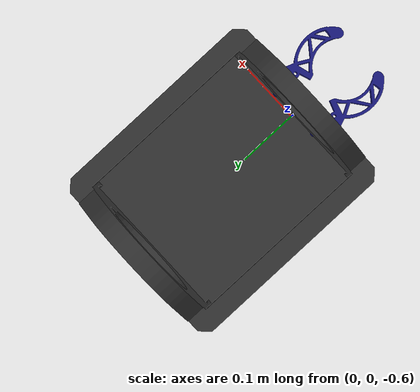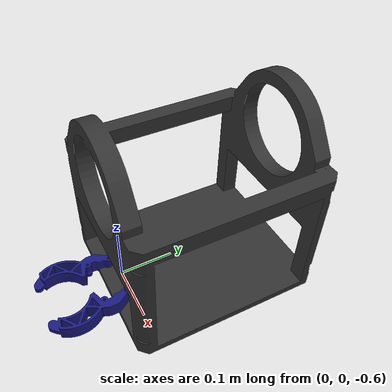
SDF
<?xml version="1.0" ?>
<sdf version="1.10">
    <!-- IMPORTANT
        Ensure that Gazebo Can find the custom plugins created in this world by typing the following command in the terminal:
        "export GZ_SIM_SYSTEM_PLUGIN_PATH=`pwd`"
    -->
    <world name="OceanWorld">
        <physics name="1ms" type="ignored">
            <max_step_size>0.001</max_step_size>
            <real_time_factor>1.0</real_time_factor>
        </physics>
        <plugin
            filename="gz-sim-physics-system"
            name="gz::sim::systems::Physics">
        </plugin>
        <plugin
            filename="gz-sim-user-commands-system"
            name="gz::sim::systems::UserCommands">
        </plugin>
        <plugin
            filename="gz-sim-scene-broadcaster-system"
            name="gz::sim::systems::SceneBroadcaster">
        </plugin>
        <plugin
            filename="plugins/libEER_Buoyancy.so"
            name="gz::sim::systems::EER_Buoyancy">
            <uniform_fluid_density>1000</uniform_fluid_density>
            <set_volume>
                <entity>Beaumont::chassis</entity>
                <!-- Displaes approcimately 23kg of water (extra volume displaced can be imagined as adding foam) -->
                <volume>0.02271175</volume>
                <center_of_volume>0 0.1325 0.1</center_of_volume>
            </set_volume>
        </plugin>
        <light type="directional" name="sun">
            <cast_shadows>true</cast_shadows>
            <pose>0 0 10 0 0 0</pose>
            <diffuse>0.8 0.8 0.8 1</diffuse>
            <specular>0.2 0.2 0.2 1</specular>
            <attenuation>
                <range>1000</range>
                <constant>0.9</constant>
                <linear>0.01</linear>
                <quadratic>0.001</quadratic>
            </attenuation>
            <direction>-0.5 0.1 -0.9</direction>
        </light>

        <model name='water_plane'>
            <static>true</static>
            <link name='link'>
              <visual name='water_plane'>
                <geometry>
                  <plane>
                    <size>100 100</size>
                    <normal>0 0 1</normal>
                  </plane>
                </geometry>
                <material>
                  <ambient>0 0 1 0.5</ambient>
                  <diffuse>0 0 1 0.5</diffuse>
                  <specular>0 0 1 0.5</specular>
                </material>
              </visual>
              <pose>0 0 0 0 0 0</pose>
              <inertial>
                <pose>0 0 0 0 0 0</pose>
                <mass>1</mass>
                <inertia>
                  <ixx>1</ixx>
                  <ixy>0</ixy>
                  <ixz>0</ixz>
                  <iyy>1</iyy>
                  <iyz>0</iyz>
                  <izz>1</izz>
                </inertia>
              </inertial>
              <enable_wind>false</enable_wind>
            </link>
            <pose>0 0 0 0 0 0</pose>
            <self_collide>false</self_collide>
          </model>
        <model name="ground_plane">
            <static>true</static>
            <pose>0 0 -4 0 0 0</pose>
            <link name="link">
                <collision name="collision">
                <geometry>
                    <plane>
                    <normal>0 0 1</normal>
                    </plane>
                </geometry>
                </collision>
                <visual name="visual">
                <geometry>
                    <plane>
                    <normal>0 0 1</normal>
                    <size>100 100</size>
                    </plane>
                </geometry>
                <material>
                    <ambient>0.8 0.8 0.8 1</ambient>
                    <diffuse>0.8 0.8 0.8 1</diffuse>
                    <specular>0.8 0.8 0.8 1</specular>
                </material>
                </visual>
            </link>
        </model>
        <include>
            <uri>models/Beaumont</uri>
            <pose>0 0 -0.5 0 0 0</pose>
        </include>
    </world>
</sdf>

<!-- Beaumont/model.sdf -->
<sdf version='1.7'>
  <model name='Beaumont'>
    <link name='chassis'>
      <pose>0 0 -0 0 -0 0</pose>
      <inertial>
        <mass>23</mass>
        <pose>0 0.13 0.025 0 -0 0</pose>
        <!-- Mass moments of inertia imported from the "Simplified ROV" model in Onshape. Material chosen was Aluminum-->
        <inertia>
          <ixx>0.34673407</ixx>
          <ixy>0</ixy>
          <ixz>0</ixz>
          <iyy>0.2546457474</iyy>
          <iyz>0.000011623</iyz>
          <izz>0.3330063202</izz>
        </inertia>
      </inertial>
      <self_collide>0</self_collide>
      <enable_wind>0</enable_wind>
      <kinematic>0</kinematic>
      <gravity>1</gravity>
      <frame name='chassis_frame'>
        <pose>0 0.5 0 0 -0 0</pose>
      </frame>
      <visual name='assembly_visual'>
        <pose>0 0 0 0 -0 0</pose>
        <geometry>
          <mesh>
            <uri>chassis_assembly.stl</uri>
            <scale>1 1 1</scale>
          </mesh>
        </geometry>
        <material>
        <shader type='pixel'/>
        <ambient>0.2 0.2 0.2 1</ambient>
        <diffuse>0.2 0.2 0.2 1</diffuse>
        <specular>0.2 0.2 0.2 1</specular>
        <emissive>0.2 0.2 0.2 1</emissive>
        </material>
        <transparency>0</transparency>
        <cast_shadows>1</cast_shadows>
      </visual>
      <collision name='assembly_collision'>
        <max_contacts>10</max_contacts>
        <pose>0 0 0 0 -0 0</pose>
        <geometry>
          <mesh>
            <uri>chassis_assembly.stl</uri>
            <scale>1 1 1</scale>
          </mesh>
        </geometry>
      </collision>
      <collision name='electronics_enclosure'>
        <laser_retro>0</laser_retro>
        <max_contacts>10</max_contacts>
        <!-- The enclosure is positioned such that the center of volume is approximately above the center of mass.
            This required a bit of trial and error.-->
        <pose>0 0.15 0.12 1.5708 0 0</pose>
        <geometry>
          <!-- Note that using Graded Buoyancy instead of Uniform Buoyancy will not work as only boxes and spheres collissions are
              interperted for Graded Buoyancy. -->
          <cylinder>
            <radius>0.083</radius>
            <length>0.3</length>
          </cylinder>
        </geometry>
      </collision>
    </link>
    <model name='left_claw'>
      <pose>0.02 -0.08 -0.02 0 -0 3.14159</pose>
      <link name='left_claw_link'>
        <inertial>
          <pose>-0.0325 0.025 0.01125 0 0 0</pose>
          <mass>0.1</mass>
        </inertial>
        <pose>0 0 -0.1 0 7e-06 0.005444</pose>
        <gravity>1</gravity>
        <self_collide>0</self_collide>
        <kinematic>0</kinematic>
        <enable_wind>0</enable_wind>
        <visual name='claw_hand_visual'>
          <pose>0 0 0 0 3e-06 3e-06</pose>
          <geometry>
            <mesh>
              <uri>claw.stl</uri>
              <scale>1 1 1</scale>
            </mesh>
            </geometry>
            <material>
              <shader type='pixel'/>
              <ambient>0.1 0.1 0.5 1</ambient>
              <diffuse>0.1 0.1 0.5 1</diffuse>
              <specular>0.1 0.1 0.5 1</specular>
              <emissive>0 0 0.5 1</emissive>
            </material>
          <transparency>0</transparency>
          <cast_shadows>1</cast_shadows>
        </visual>
        <collision name='collision_1'>
          <laser_retro>0</laser_retro>
          <max_contacts>10</max_contacts>
          <pose>0 0 0 0 -0 0</pose>
          <geometry>
            <mesh>
                <uri>claw.stl</uri>
              <scale>1 1 1</scale>
            </mesh>
          </geometry>
        </collision>
      </link>
      <static>0</static>
      <allow_auto_disable>1</allow_auto_disable>
    </model>
    <model name='right_claw'>
      <pose>-0.02 -0.08 -0.2 0 3.14159 3.14159</pose>
      <link name='right_claw_link'>
        <inertial>
          <pose>-0.0325 0.025 0.01125 0 0 0</pose>
          <mass>0.1</mass>
        </inertial>
        <pose>0 0 -0.1 0 7e-06 0.005444</pose>
        <gravity>1</gravity>
        <self_collide>0</self_collide>
        <kinematic>0</kinematic>
        <enable_wind>0</enable_wind>
        <visual name='claw_hand_visual'>
          <pose>0 0 0 0 3e-06 3e-06</pose>
          <geometry>
            <mesh>
              <uri>claw.stl</uri>
              <scale>1 1 1</scale>
            </mesh>
            </geometry>
            <material>
              <shader type='pixel'/>
              <ambient>0.1 0.1 0.5 1</ambient>
              <diffuse>0.1 0.1 0.5 1</diffuse>
              <specular>0.1 0.1 0.5 1</specular>
              <emissive>0 0 0.5 1</emissive>
            </material>
          <transparency>0</transparency>
          <cast_shadows>1</cast_shadows>
        </visual>
        <collision name='collision_1'>
          <laser_retro>0</laser_retro>
          <max_contacts>10</max_contacts>
          <pose>0 0 0 0 -0 0</pose>
          <geometry>
            <mesh>
                <uri>claw.stl</uri>
              <scale>1 1 1</scale>
            </mesh>
          </geometry>
        </collision>
      </link>
      <static>0</static>
      <allow_auto_disable>1</allow_auto_disable>
    </model>
    <joint name='chassis_JOINT_0_1' type='revolute'>
      <parent>chassis</parent>
      <child>right_claw::right_claw_link</child>
      <pose>0 -0.01 0 0 -0 0</pose>
      <axis>
        <xyz>0 0 1</xyz>
        <limit>
          <lower>-0.4363</lower>
          <upper>0.4363</upper>
          <effort>-1</effort>
          <velocity>-1</velocity>
        </limit>
        <dynamics>
          <spring_reference>0</spring_reference>
          <spring_stiffness>0</spring_stiffness>
          <damping>0</damping>
          <friction>0</friction>
        </dynamics>
      </axis>
      <physics>
        <ode>
          <limit>
            <cfm>0</cfm>
            <erp>0.2</erp>
          </limit>
          <suspension>
            <cfm>0</cfm>
            <erp>0.2</erp>
          </suspension>
        </ode>
      </physics>
    </joint>
    <joint name='chassis_JOINT_1_1' type='revolute'>
      <parent>chassis</parent>
      <child>left_claw::left_claw_link</child>
      <pose>-0.023 -0.07 0.02 0 -0 0</pose>
      <axis>
        <xyz>0 0 1</xyz>
        <limit>
          <lower>-0.4363</lower>
          <upper>0.4363</upper>
          <effort>-1</effort>
          <velocity>-1</velocity>
        </limit>
        <dynamics>
          <spring_reference>0</spring_reference>
          <spring_stiffness>0</spring_stiffness>
          <damping>0</damping>
          <friction>0</friction>
        </dynamics>
      </axis>
      <physics>
        <ode>
          <limit>
            <cfm>0</cfm>
            <erp>0.2</erp>
          </limit>
          <suspension>
            <cfm>0</cfm>
            <erp>0.2</erp>
          </suspension>
        </ode>
      </physics>
    </joint>
    <static>0</static>
    <self_collide>0</self_collide>
    <allow_auto_disable>1</allow_auto_disable>
  </model>
</sdf>
